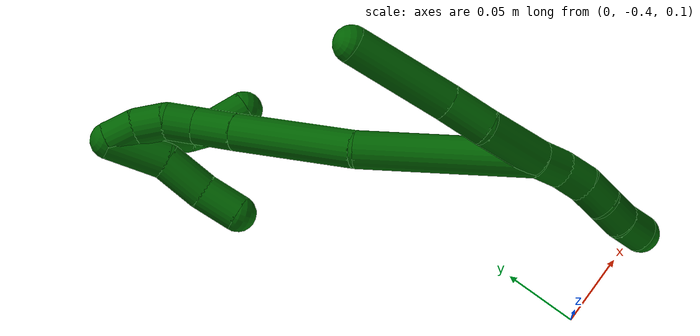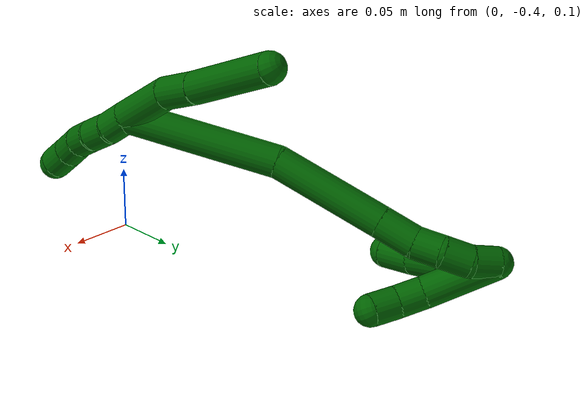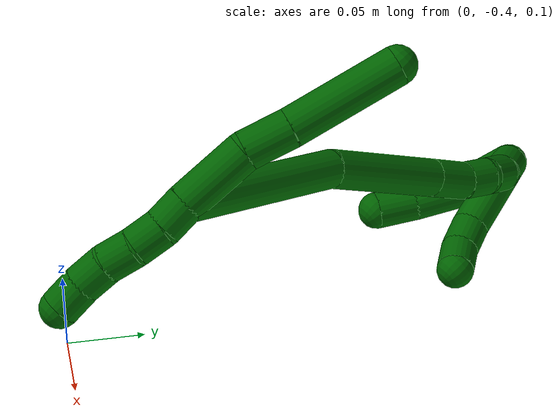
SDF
<sdf version="1.7">
 <world name="default">
  <model name="6">
   <static>0</static>
   <link name="6">
    <collision name="collision-cylinder-e_1_2_8">
     <pose>0.002478 0.003219 0.022706 -0.140833 0.107646 -0.0076</pose>
     <geometry><cylinder><radius>0.0125</radius><length>0.046132</length></cylinder></geometry>
     <surface>
      <friction><ode><mu>1.16</mu><mu2>1.16</mu2><slip1>0</slip1><slip2>0</slip2></ode></friction>
      <contact><ode><kp>1e+06</kp><kd>1</kd><max_vel>0</max_vel><min_depth>0.001</min_depth></ode></contact>
     </surface>
    </collision>
    <visual name="visual-cylinder-e_1_2_8">
     <pose>0.002478 0.003219 0.022706 -0.140833 0.107646 -0.0076</pose>
     <geometry><cylinder><radius>0.0125</radius><length>0.046132</length></cylinder></geometry>
     <material><ambient>0 0.392157 0.003922 1</ambient></material>
    </visual>
    <collision name="collision-cylinder-e_2_8_9">
     <pose>0.00313 0.0106 0.06002 -0.277537 -0.119685 0.016736</pose>
     <geometry><cylinder><radius>0.0125</radius><length>0.030598</length></cylinder></geometry>
     <surface>
      <friction><ode><mu>1.16</mu><mu2>1.16</mu2><slip1>0</slip1><slip2>0</slip2></ode></friction>
      <contact><ode><kp>1e+06</kp><kd>1</kd><max_vel>0</max_vel><min_depth>0.001</min_depth></ode></contact>
     </surface>
    </collision>
    <visual name="visual-cylinder-e_2_8_9">
     <pose>0.00313 0.0106 0.06002 -0.277537 -0.119685 0.016736</pose>
     <geometry><cylinder><radius>0.0125</radius><length>0.030598</length></cylinder></geometry>
     <material><ambient>0 0.392157 0.003922 1</ambient></material>
    </visual>
    <collision name="collision-cylinder-e_3_9_6">
     <pose>-0.001631 0.023138 0.110172 -0.231441 -0.080172 0.009324</pose>
     <geometry><cylinder><radius>0.0125</radius><length>0.073269</length></cylinder></geometry>
     <surface>
      <friction><ode><mu>1.16</mu><mu2>1.16</mu2><slip1>0</slip1><slip2>0</slip2></ode></friction>
      <contact><ode><kp>1e+06</kp><kd>1</kd><max_vel>0</max_vel><min_depth>0.001</min_depth></ode></contact>
     </surface>
    </collision>
    <visual name="visual-cylinder-e_3_9_6">
     <pose>-0.001631 0.023138 0.110172 -0.231441 -0.080172 0.009324</pose>
     <geometry><cylinder><radius>0.0125</radius><length>0.073269</length></cylinder></geometry>
     <material><ambient>0 0.392157 0.003922 1</ambient></material>
    </visual>
    <collision name="collision-cylinder-e_1_2_10">
     <pose>-0.001138 -0.000252 -0.009932 3.11627 -0.114013 -2.70495</pose>
     <geometry><cylinder><radius>0.0125</radius><length>0.02</length></cylinder></geometry>
     <surface>
      <friction><ode><mu>1.16</mu><mu2>1.16</mu2><slip1>0</slip1><slip2>0</slip2></ode></friction>
      <contact><ode><kp>1e+06</kp><kd>1</kd><max_vel>0</max_vel><min_depth>0.001</min_depth></ode></contact>
     </surface>
    </collision>
    <visual name="visual-cylinder-e_1_2_10">
     <pose>-0.001138 -0.000252 -0.009932 3.11627 -0.114013 -2.70495</pose>
     <geometry><cylinder><radius>0.0125</radius><length>0.02</length></cylinder></geometry>
     <material><ambient>0 0.392157 0.003922 1</ambient></material>
    </visual>
    <collision name="collision-cylinder-e_2_10_11">
     <pose>-0.002552 -0.002532 -0.029652 2.93722 -0.027681 -0.268345</pose>
     <geometry><cylinder><radius>0.0125</radius><length>0.02</length></cylinder></geometry>
     <surface>
      <friction><ode><mu>1.16</mu><mu2>1.16</mu2><slip1>0</slip1><slip2>0</slip2></ode></friction>
      <contact><ode><kp>1e+06</kp><kd>1</kd><max_vel>0</max_vel><min_depth>0.001</min_depth></ode></contact>
     </surface>
    </collision>
    <visual name="visual-cylinder-e_2_10_11">
     <pose>-0.002552 -0.002532 -0.029652 2.93722 -0.027681 -0.268345</pose>
     <geometry><cylinder><radius>0.0125</radius><length>0.02</length></cylinder></geometry>
     <material><ambient>0 0.392157 0.003922 1</ambient></material>
    </visual>
    <collision name="collision-cylinder-e_3_11_12">
     <pose>-0.003706 -0.008263 -0.048688 2.76074 -0.087814 -0.448193</pose>
     <geometry><cylinder><radius>0.0125</radius><length>0.02</length></cylinder></geometry>
     <surface>
      <friction><ode><mu>1.16</mu><mu2>1.16</mu2><slip1>0</slip1><slip2>0</slip2></ode></friction>
      <contact><ode><kp>1e+06</kp><kd>1</kd><max_vel>0</max_vel><min_depth>0.001</min_depth></ode></contact>
     </surface>
    </collision>
    <visual name="visual-cylinder-e_3_11_12">
     <pose>-0.003706 -0.008263 -0.048688 2.76074 -0.087814 -0.448193</pose>
     <geometry><cylinder><radius>0.0125</radius><length>0.02</length></cylinder></geometry>
     <material><ambient>0 0.392157 0.003922 1</ambient></material>
    </visual>
    <collision name="collision-cylinder-e_4_12_13">
     <pose>-0.007016 -0.01475 -0.067227 2.85046 -0.24578 -1.40025</pose>
     <geometry><cylinder><radius>0.0125</radius><length>0.02</length></cylinder></geometry>
     <surface>
      <friction><ode><mu>1.16</mu><mu2>1.16</mu2><slip1>0</slip1><slip2>0</slip2></ode></friction>
      <contact><ode><kp>1e+06</kp><kd>1</kd><max_vel>0</max_vel><min_depth>0.001</min_depth></ode></contact>
     </surface>
    </collision>
    <visual name="visual-cylinder-e_4_12_13">
     <pose>-0.007016 -0.01475 -0.067227 2.85046 -0.24578 -1.40025</pose>
     <geometry><cylinder><radius>0.0125</radius><length>0.02</length></cylinder></geometry>
     <material><ambient>0 0.392157 0.003922 1</ambient></material>
    </visual>
    <collision name="collision-cylinder-e_5_13_5">
     <pose>-0.011725 -0.018742 -0.08618 3.01723 -0.22962 -2.15143</pose>
     <geometry><cylinder><radius>0.0125</radius><length>0.02</length></cylinder></geometry>
     <surface>
      <friction><ode><mu>1.16</mu><mu2>1.16</mu2><slip1>0</slip1><slip2>0</slip2></ode></friction>
      <contact><ode><kp>1e+06</kp><kd>1</kd><max_vel>0</max_vel><min_depth>0.001</min_depth></ode></contact>
     </surface>
    </collision>
    <visual name="visual-cylinder-e_5_13_5">
     <pose>-0.011725 -0.018742 -0.08618 3.01723 -0.22962 -2.15143</pose>
     <geometry><cylinder><radius>0.0125</radius><length>0.02</length></cylinder></geometry>
     <material><ambient>0 0.392157 0.003922 1</ambient></material>
    </visual>
    <collision name="collision-cylinder-e_1_2_14">
     <pose>-0.040644 -0.003911 0.043484 0.0897 -0.749647 -0.03531</pose>
     <geometry><cylinder><radius>0.0125</radius><length>0.119299</length></cylinder></geometry>
     <surface>
      <friction><ode><mu>1.16</mu><mu2>1.16</mu2><slip1>0</slip1><slip2>0</slip2></ode></friction>
      <contact><ode><kp>1e+06</kp><kd>1</kd><max_vel>0</max_vel><min_depth>0.001</min_depth></ode></contact>
     </surface>
    </collision>
    <visual name="visual-cylinder-e_1_2_14">
     <pose>-0.040644 -0.003911 0.043484 0.0897 -0.749647 -0.03531</pose>
     <geometry><cylinder><radius>0.0125</radius><length>0.119299</length></cylinder></geometry>
     <material><ambient>0 0.392157 0.003922 1</ambient></material>
    </visual>
    <collision name="collision-cylinder-e_2_14_15">
     <pose>-0.116574 -0.004217 0.112793 -0.13868 -0.93439 0.07004</pose>
     <geometry><cylinder><radius>0.0125</radius><length>0.08775</length></cylinder></geometry>
     <surface>
      <friction><ode><mu>1.16</mu><mu2>1.16</mu2><slip1>0</slip1><slip2>0</slip2></ode></friction>
      <contact><ode><kp>1e+06</kp><kd>1</kd><max_vel>0</max_vel><min_depth>0.001</min_depth></ode></contact>
     </surface>
    </collision>
    <visual name="visual-cylinder-e_2_14_15">
     <pose>-0.116574 -0.004217 0.112793 -0.13868 -0.93439 0.07004</pose>
     <geometry><cylinder><radius>0.0125</radius><length>0.08775</length></cylinder></geometry>
     <material><ambient>0 0.392157 0.003922 1</ambient></material>
    </visual>
    <collision name="collision-cylinder-e_3_15_16">
     <pose>-0.163591 0.00082 0.147272 -0.164111 -0.928705 0.082339</pose>
     <geometry><cylinder><radius>0.0125</radius><length>0.029297</length></cylinder></geometry>
     <surface>
      <friction><ode><mu>1.16</mu><mu2>1.16</mu2><slip1>0</slip1><slip2>0</slip2></ode></friction>
      <contact><ode><kp>1e+06</kp><kd>1</kd><max_vel>0</max_vel><min_depth>0.001</min_depth></ode></contact>
     </surface>
    </collision>
    <visual name="visual-cylinder-e_3_15_16">
     <pose>-0.163591 0.00082 0.147272 -0.164111 -0.928705 0.082339</pose>
     <geometry><cylinder><radius>0.0125</radius><length>0.029297</length></cylinder></geometry>
     <material><ambient>0 0.392157 0.003922 1</ambient></material>
    </visual>
    <collision name="collision-cylinder-e_4_16_17">
     <pose>-0.182168 0.002633 0.163622 -0.049234 -0.726475 0.018717</pose>
     <geometry><cylinder><radius>0.0125</radius><length>0.020613</length></cylinder></geometry>
     <surface>
      <friction><ode><mu>1.16</mu><mu2>1.16</mu2><slip1>0</slip1><slip2>0</slip2></ode></friction>
      <contact><ode><kp>1e+06</kp><kd>1</kd><max_vel>0</max_vel><min_depth>0.001</min_depth></ode></contact>
     </surface>
    </collision>
    <visual name="visual-cylinder-e_4_16_17">
     <pose>-0.182168 0.002633 0.163622 -0.049234 -0.726475 0.018717</pose>
     <geometry><cylinder><radius>0.0125</radius><length>0.020613</length></cylinder></geometry>
     <material><ambient>0 0.392157 0.003922 1</ambient></material>
    </visual>
    <collision name="collision-cylinder-e_5_17_18">
     <pose>-0.197559 0.000347 0.17778 0.391131 -0.88507 -0.187201</pose>
     <geometry><cylinder><radius>0.0125</radius><length>0.022081</length></cylinder></geometry>
     <surface>
      <friction><ode><mu>1.16</mu><mu2>1.16</mu2><slip1>0</slip1><slip2>0</slip2></ode></friction>
      <contact><ode><kp>1e+06</kp><kd>1</kd><max_vel>0</max_vel><min_depth>0.001</min_depth></ode></contact>
     </surface>
    </collision>
    <visual name="visual-cylinder-e_5_17_18">
     <pose>-0.197559 0.000347 0.17778 0.391131 -0.88507 -0.187201</pose>
     <geometry><cylinder><radius>0.0125</radius><length>0.022081</length></cylinder></geometry>
     <material><ambient>0 0.392157 0.003922 1</ambient></material>
    </visual>
    <collision name="collision-cylinder-e_6_18_1">
     <pose>-0.212578 -0.007989 0.190223 0.758784 -0.66589 -0.274033</pose>
     <geometry><cylinder><radius>0.0125</radius><length>0.02096</length></cylinder></geometry>
     <surface>
      <friction><ode><mu>1.16</mu><mu2>1.16</mu2><slip1>0</slip1><slip2>0</slip2></ode></friction>
      <contact><ode><kp>1e+06</kp><kd>1</kd><max_vel>0</max_vel><min_depth>0.001</min_depth></ode></contact>
     </surface>
    </collision>
    <visual name="visual-cylinder-e_6_18_1">
     <pose>-0.212578 -0.007989 0.190223 0.758784 -0.66589 -0.274033</pose>
     <geometry><cylinder><radius>0.0125</radius><length>0.02096</length></cylinder></geometry>
     <material><ambient>0 0.392157 0.003922 1</ambient></material>
    </visual>
    <collision name="collision-cylinder-e_1_1_19">
     <pose>-0.215846 -0.00356 0.169667 -2.77795 0.112455 -0.594181</pose>
     <geometry><cylinder><radius>0.0125</radius><length>0.057149</length></cylinder></geometry>
     <surface>
      <friction><ode><mu>1.16</mu><mu2>1.16</mu2><slip1>0</slip1><slip2>0</slip2></ode></friction>
      <contact><ode><kp>1e+06</kp><kd>1</kd><max_vel>0</max_vel><min_depth>0.001</min_depth></ode></contact>
     </surface>
    </collision>
    <visual name="visual-cylinder-e_1_1_19">
     <pose>-0.215846 -0.00356 0.169667 -2.77795 0.112455 -0.594181</pose>
     <geometry><cylinder><radius>0.0125</radius><length>0.057149</length></cylinder></geometry>
     <material><ambient>0 0.392157 0.003922 1</ambient></material>
    </visual>
    <collision name="collision-cylinder-e_2_19_20">
     <pose>-0.210309 0.011877 0.13415 -2.60524 0.219446 -0.762557</pose>
     <geometry><cylinder><radius>0.0125</radius><length>0.021406</length></cylinder></geometry>
     <surface>
      <friction><ode><mu>1.16</mu><mu2>1.16</mu2><slip1>0</slip1><slip2>0</slip2></ode></friction>
      <contact><ode><kp>1e+06</kp><kd>1</kd><max_vel>0</max_vel><min_depth>0.001</min_depth></ode></contact>
     </surface>
    </collision>
    <visual name="visual-cylinder-e_2_19_20">
     <pose>-0.210309 0.011877 0.13415 -2.60524 0.219446 -0.762557</pose>
     <geometry><cylinder><radius>0.0125</radius><length>0.021406</length></cylinder></geometry>
     <material><ambient>0 0.392157 0.003922 1</ambient></material>
    </visual>
    <collision name="collision-cylinder-e_3_20_4">
     <pose>-0.204409 0.024456 0.118114 -2.34333 0.339472 -0.77193</pose>
     <geometry><cylinder><radius>0.0125</radius><length>0.021446</length></cylinder></geometry>
     <surface>
      <friction><ode><mu>1.16</mu><mu2>1.16</mu2><slip1>0</slip1><slip2>0</slip2></ode></friction>
      <contact><ode><kp>1e+06</kp><kd>1</kd><max_vel>0</max_vel><min_depth>0.001</min_depth></ode></contact>
     </surface>
    </collision>
    <visual name="visual-cylinder-e_3_20_4">
     <pose>-0.204409 0.024456 0.118114 -2.34333 0.339472 -0.77193</pose>
     <geometry><cylinder><radius>0.0125</radius><length>0.021446</length></cylinder></geometry>
     <material><ambient>0 0.392157 0.003922 1</ambient></material>
    </visual>
    <collision name="collision-cylinder-e_1_1_21">
     <pose>-0.2135 -0.015697 0.176963 3.03607 0.279444 2.42315</pose>
     <geometry><cylinder><radius>0.0125</radius><length>0.040258</length></cylinder></geometry>
     <surface>
      <friction><ode><mu>1.16</mu><mu2>1.16</mu2><slip1>0</slip1><slip2>0</slip2></ode></friction>
      <contact><ode><kp>1e+06</kp><kd>1</kd><max_vel>0</max_vel><min_depth>0.001</min_depth></ode></contact>
     </surface>
    </collision>
    <visual name="visual-cylinder-e_1_1_21">
     <pose>-0.2135 -0.015697 0.176963 3.03607 0.279444 2.42315</pose>
     <geometry><cylinder><radius>0.0125</radius><length>0.040258</length></cylinder></geometry>
     <material><ambient>0 0.392157 0.003922 1</ambient></material>
    </visual>
    <collision name="collision-cylinder-e_2_21_22">
     <pose>-0.20444 -0.024751 0.143436 2.68509 0.216941 0.876725</pose>
     <geometry><cylinder><radius>0.0125</radius><length>0.032598</length></cylinder></geometry>
     <surface>
      <friction><ode><mu>1.16</mu><mu2>1.16</mu2><slip1>0</slip1><slip2>0</slip2></ode></friction>
      <contact><ode><kp>1e+06</kp><kd>1</kd><max_vel>0</max_vel><min_depth>0.001</min_depth></ode></contact>
     </surface>
    </collision>
    <visual name="visual-cylinder-e_2_21_22">
     <pose>-0.20444 -0.024751 0.143436 2.68509 0.216941 0.876725</pose>
     <geometry><cylinder><radius>0.0125</radius><length>0.032598</length></cylinder></geometry>
     <material><ambient>0 0.392157 0.003922 1</ambient></material>
    </visual>
    <collision name="collision-cylinder-e_3_22_3">
     <pose>-0.195859 -0.036586 0.117519 2.74886 0.383036 1.54515</pose>
     <geometry><cylinder><radius>0.0125</radius><length>0.027144</length></cylinder></geometry>
     <surface>
      <friction><ode><mu>1.16</mu><mu2>1.16</mu2><slip1>0</slip1><slip2>0</slip2></ode></friction>
      <contact><ode><kp>1e+06</kp><kd>1</kd><max_vel>0</max_vel><min_depth>0.001</min_depth></ode></contact>
     </surface>
    </collision>
    <visual name="visual-cylinder-e_3_22_3">
     <pose>-0.195859 -0.036586 0.117519 2.74886 0.383036 1.54515</pose>
     <geometry><cylinder><radius>0.0125</radius><length>0.027144</length></cylinder></geometry>
     <material><ambient>0 0.392157 0.003922 1</ambient></material>
    </visual>
    <collision name="collision-sphere-3">
     <pose>-0.190787 -0.041404 0.105889 0 -0 0</pose>
     <geometry><sphere><radius>0.0125</radius></sphere></geometry>
     <surface>
      <friction><ode><mu>1.16</mu><mu2>1.16</mu2><slip1>0</slip1><slip2>0</slip2></ode></friction>
      <contact><ode><kp>1e+06</kp><kd>1</kd><max_vel>0</max_vel><min_depth>0.001</min_depth></ode></contact>
     </surface>
    </collision>
    <visual name="visual-sphere-3">
     <pose>-0.190787 -0.041404 0.105889 0 -0 0</pose>
     <geometry><sphere><radius>0.0125</radius></sphere></geometry>
     <material><ambient>0 0.392157 0.003922 1</ambient></material>
    </visual>
    <collision name="collision-sphere-22">
     <pose>-0.200932 -0.031768 0.129149 0 -0 0</pose>
     <geometry><sphere><radius>0.0125</radius></sphere></geometry>
     <surface>
      <friction><ode><mu>1.16</mu><mu2>1.16</mu2><slip1>0</slip1><slip2>0</slip2></ode></friction>
      <contact><ode><kp>1e+06</kp><kd>1</kd><max_vel>0</max_vel><min_depth>0.001</min_depth></ode></contact>
     </surface>
    </collision>
    <visual name="visual-sphere-22">
     <pose>-0.200932 -0.031768 0.129149 0 -0 0</pose>
     <geometry><sphere><radius>0.0125</radius></sphere></geometry>
     <material><ambient>0 0.392157 0.003922 1</ambient></material>
    </visual>
    <collision name="collision-sphere-21">
     <pose>-0.207948 -0.017735 0.157723 0 -0 0</pose>
     <geometry><sphere><radius>0.0125</radius></sphere></geometry>
     <surface>
      <friction><ode><mu>1.16</mu><mu2>1.16</mu2><slip1>0</slip1><slip2>0</slip2></ode></friction>
      <contact><ode><kp>1e+06</kp><kd>1</kd><max_vel>0</max_vel><min_depth>0.001</min_depth></ode></contact>
     </surface>
    </collision>
    <visual name="visual-sphere-21">
     <pose>-0.207948 -0.017735 0.157723 0 -0 0</pose>
     <geometry><sphere><radius>0.0125</radius></sphere></geometry>
     <material><ambient>0 0.392157 0.003922 1</ambient></material>
    </visual>
    <collision name="collision-sphere-4">
     <pose>-0.200838 0.031697 0.111057 0 -0 0</pose>
     <geometry><sphere><radius>0.0125</radius></sphere></geometry>
     <surface>
      <friction><ode><mu>1.16</mu><mu2>1.16</mu2><slip1>0</slip1><slip2>0</slip2></ode></friction>
      <contact><ode><kp>1e+06</kp><kd>1</kd><max_vel>0</max_vel><min_depth>0.001</min_depth></ode></contact>
     </surface>
    </collision>
    <visual name="visual-sphere-4">
     <pose>-0.200838 0.031697 0.111057 0 -0 0</pose>
     <geometry><sphere><radius>0.0125</radius></sphere></geometry>
     <material><ambient>0 0.392157 0.003922 1</ambient></material>
    </visual>
    <collision name="collision-sphere-20">
     <pose>-0.207979 0.017215 0.125171 0 -0 0</pose>
     <geometry><sphere><radius>0.0125</radius></sphere></geometry>
     <surface>
      <friction><ode><mu>1.16</mu><mu2>1.16</mu2><slip1>0</slip1><slip2>0</slip2></ode></friction>
      <contact><ode><kp>1e+06</kp><kd>1</kd><max_vel>0</max_vel><min_depth>0.001</min_depth></ode></contact>
     </surface>
    </collision>
    <visual name="visual-sphere-20">
     <pose>-0.207979 0.017215 0.125171 0 -0 0</pose>
     <geometry><sphere><radius>0.0125</radius></sphere></geometry>
     <material><ambient>0 0.392157 0.003922 1</ambient></material>
    </visual>
    <collision name="collision-sphere-11">
     <pose>-0.002829 -0.004561 -0.03944 0 -0 0</pose>
     <geometry><sphere><radius>0.0125</radius></sphere></geometry>
     <surface>
      <friction><ode><mu>1.16</mu><mu2>1.16</mu2><slip1>0</slip1><slip2>0</slip2></ode></friction>
      <contact><ode><kp>1e+06</kp><kd>1</kd><max_vel>0</max_vel><min_depth>0.001</min_depth></ode></contact>
     </surface>
    </collision>
    <visual name="visual-sphere-11">
     <pose>-0.002829 -0.004561 -0.03944 0 -0 0</pose>
     <geometry><sphere><radius>0.0125</radius></sphere></geometry>
     <material><ambient>0 0.392157 0.003922 1</ambient></material>
    </visual>
    <collision name="collision-sphere-10">
     <pose>-0.002275 -0.000503 -0.019864 0 -0 0</pose>
     <geometry><sphere><radius>0.0125</radius></sphere></geometry>
     <surface>
      <friction><ode><mu>1.16</mu><mu2>1.16</mu2><slip1>0</slip1><slip2>0</slip2></ode></friction>
      <contact><ode><kp>1e+06</kp><kd>1</kd><max_vel>0</max_vel><min_depth>0.001</min_depth></ode></contact>
     </surface>
    </collision>
    <visual name="visual-sphere-10">
     <pose>-0.002275 -0.000503 -0.019864 0 -0 0</pose>
     <geometry><sphere><radius>0.0125</radius></sphere></geometry>
     <material><ambient>0 0.392157 0.003922 1</ambient></material>
    </visual>
    <collision name="collision-sphere-6">
     <pose>-0.004565 0.031514 0.145715 0 -0 0</pose>
     <geometry><sphere><radius>0.0125</radius></sphere></geometry>
     <surface>
      <friction><ode><mu>1.16</mu><mu2>1.16</mu2><slip1>0</slip1><slip2>0</slip2></ode></friction>
      <contact><ode><kp>1e+06</kp><kd>1</kd><max_vel>0</max_vel><min_depth>0.001</min_depth></ode></contact>
     </surface>
    </collision>
    <visual name="visual-sphere-6">
     <pose>-0.004565 0.031514 0.145715 0 -0 0</pose>
     <geometry><sphere><radius>0.0125</radius></sphere></geometry>
     <material><ambient>0 0.392157 0.003922 1</ambient></material>
    </visual>
    <collision name="collision-sphere-9">
     <pose>0.001303 0.014762 0.074628 0 -0 0</pose>
     <geometry><sphere><radius>0.0125</radius></sphere></geometry>
     <surface>
      <friction><ode><mu>1.16</mu><mu2>1.16</mu2><slip1>0</slip1><slip2>0</slip2></ode></friction>
      <contact><ode><kp>1e+06</kp><kd>1</kd><max_vel>0</max_vel><min_depth>0.001</min_depth></ode></contact>
     </surface>
    </collision>
    <visual name="visual-sphere-9">
     <pose>0.001303 0.014762 0.074628 0 -0 0</pose>
     <geometry><sphere><radius>0.0125</radius></sphere></geometry>
     <material><ambient>0 0.392157 0.003922 1</ambient></material>
    </visual>
    <collision name="collision-sphere-2">
     <geometry><sphere><radius>0.0125</radius></sphere></geometry>
     <surface>
      <friction><ode><mu>1.16</mu><mu2>1.16</mu2><slip1>0</slip1><slip2>0</slip2></ode></friction>
      <contact><ode><kp>1e+06</kp><kd>1</kd><max_vel>0</max_vel><min_depth>0.001</min_depth></ode></contact>
     </surface>
    </collision>
    <visual name="visual-sphere-2">
     <geometry><sphere><radius>0.0125</radius></sphere></geometry>
     <material><ambient>0 0.392157 0.003922 1</ambient></material>
    </visual>
    <collision name="collision-sphere-19">
     <pose>-0.212639 0.006539 0.14313 0 -0 0</pose>
     <geometry><sphere><radius>0.0125</radius></sphere></geometry>
     <surface>
      <friction><ode><mu>1.16</mu><mu2>1.16</mu2><slip1>0</slip1><slip2>0</slip2></ode></friction>
      <contact><ode><kp>1e+06</kp><kd>1</kd><max_vel>0</max_vel><min_depth>0.001</min_depth></ode></contact>
     </surface>
    </collision>
    <visual name="visual-sphere-19">
     <pose>-0.212639 0.006539 0.14313 0 -0 0</pose>
     <geometry><sphere><radius>0.0125</radius></sphere></geometry>
     <material><ambient>0 0.392157 0.003922 1</ambient></material>
    </visual>
    <collision name="collision-sphere-8">
     <pose>0.004956 0.006438 0.045411 0 -0 0</pose>
     <geometry><sphere><radius>0.0125</radius></sphere></geometry>
     <surface>
      <friction><ode><mu>1.16</mu><mu2>1.16</mu2><slip1>0</slip1><slip2>0</slip2></ode></friction>
      <contact><ode><kp>1e+06</kp><kd>1</kd><max_vel>0</max_vel><min_depth>0.001</min_depth></ode></contact>
     </surface>
    </collision>
    <visual name="visual-sphere-8">
     <pose>0.004956 0.006438 0.045411 0 -0 0</pose>
     <geometry><sphere><radius>0.0125</radius></sphere></geometry>
     <material><ambient>0 0.392157 0.003922 1</ambient></material>
    </visual>
    <collision name="collision-sphere-12">
     <pose>-0.004583 -0.011966 -0.057935 0 -0 0</pose>
     <geometry><sphere><radius>0.0125</radius></sphere></geometry>
     <surface>
      <friction><ode><mu>1.16</mu><mu2>1.16</mu2><slip1>0</slip1><slip2>0</slip2></ode></friction>
      <contact><ode><kp>1e+06</kp><kd>1</kd><max_vel>0</max_vel><min_depth>0.001</min_depth></ode></contact>
     </surface>
    </collision>
    <visual name="visual-sphere-12">
     <pose>-0.004583 -0.011966 -0.057935 0 -0 0</pose>
     <geometry><sphere><radius>0.0125</radius></sphere></geometry>
     <material><ambient>0 0.392157 0.003922 1</ambient></material>
    </visual>
    <collision name="collision-sphere-13">
     <pose>-0.009449 -0.017534 -0.076518 0 -0 0</pose>
     <geometry><sphere><radius>0.0125</radius></sphere></geometry>
     <surface>
      <friction><ode><mu>1.16</mu><mu2>1.16</mu2><slip1>0</slip1><slip2>0</slip2></ode></friction>
      <contact><ode><kp>1e+06</kp><kd>1</kd><max_vel>0</max_vel><min_depth>0.001</min_depth></ode></contact>
     </surface>
    </collision>
    <visual name="visual-sphere-13">
     <pose>-0.009449 -0.017534 -0.076518 0 -0 0</pose>
     <geometry><sphere><radius>0.0125</radius></sphere></geometry>
     <material><ambient>0 0.392157 0.003922 1</ambient></material>
    </visual>
    <collision name="collision-sphere-5">
     <pose>-0.014001 -0.01995 -0.095843 0 -0 0</pose>
     <geometry><sphere><radius>0.0125</radius></sphere></geometry>
     <surface>
      <friction><ode><mu>1.16</mu><mu2>1.16</mu2><slip1>0</slip1><slip2>0</slip2></ode></friction>
      <contact><ode><kp>1e+06</kp><kd>1</kd><max_vel>0</max_vel><min_depth>0.001</min_depth></ode></contact>
     </surface>
    </collision>
    <visual name="visual-sphere-5">
     <pose>-0.014001 -0.01995 -0.095843 0 -0 0</pose>
     <geometry><sphere><radius>0.0125</radius></sphere></geometry>
     <material><ambient>0 0.392157 0.003922 1</ambient></material>
    </visual>
    <collision name="collision-sphere-14">
     <pose>-0.081288 -0.007822 0.086967 0 -0 0</pose>
     <geometry><sphere><radius>0.0125</radius></sphere></geometry>
     <surface>
      <friction><ode><mu>1.16</mu><mu2>1.16</mu2><slip1>0</slip1><slip2>0</slip2></ode></friction>
      <contact><ode><kp>1e+06</kp><kd>1</kd><max_vel>0</max_vel><min_depth>0.001</min_depth></ode></contact>
     </surface>
    </collision>
    <visual name="visual-sphere-14">
     <pose>-0.081288 -0.007822 0.086967 0 -0 0</pose>
     <geometry><sphere><radius>0.0125</radius></sphere></geometry>
     <material><ambient>0 0.392157 0.003922 1</ambient></material>
    </visual>
    <collision name="collision-sphere-15">
     <pose>-0.15186 -0.000613 0.138618 0 -0 0</pose>
     <geometry><sphere><radius>0.0125</radius></sphere></geometry>
     <surface>
      <friction><ode><mu>1.16</mu><mu2>1.16</mu2><slip1>0</slip1><slip2>0</slip2></ode></friction>
      <contact><ode><kp>1e+06</kp><kd>1</kd><max_vel>0</max_vel><min_depth>0.001</min_depth></ode></contact>
     </surface>
    </collision>
    <visual name="visual-sphere-15">
     <pose>-0.15186 -0.000613 0.138618 0 -0 0</pose>
     <geometry><sphere><radius>0.0125</radius></sphere></geometry>
     <material><ambient>0 0.392157 0.003922 1</ambient></material>
    </visual>
    <collision name="collision-sphere-16">
     <pose>-0.175322 0.002254 0.155927 0 -0 0</pose>
     <geometry><sphere><radius>0.0125</radius></sphere></geometry>
     <surface>
      <friction><ode><mu>1.16</mu><mu2>1.16</mu2><slip1>0</slip1><slip2>0</slip2></ode></friction>
      <contact><ode><kp>1e+06</kp><kd>1</kd><max_vel>0</max_vel><min_depth>0.001</min_depth></ode></contact>
     </surface>
    </collision>
    <visual name="visual-sphere-16">
     <pose>-0.175322 0.002254 0.155927 0 -0 0</pose>
     <geometry><sphere><radius>0.0125</radius></sphere></geometry>
     <material><ambient>0 0.392157 0.003922 1</ambient></material>
    </visual>
    <collision name="collision-sphere-17">
     <pose>-0.189014 0.003012 0.171317 0 -0 0</pose>
     <geometry><sphere><radius>0.0125</radius></sphere></geometry>
     <surface>
      <friction><ode><mu>1.16</mu><mu2>1.16</mu2><slip1>0</slip1><slip2>0</slip2></ode></friction>
      <contact><ode><kp>1e+06</kp><kd>1</kd><max_vel>0</max_vel><min_depth>0.001</min_depth></ode></contact>
     </surface>
    </collision>
    <visual name="visual-sphere-17">
     <pose>-0.189014 0.003012 0.171317 0 -0 0</pose>
     <geometry><sphere><radius>0.0125</radius></sphere></geometry>
     <material><ambient>0 0.392157 0.003922 1</ambient></material>
    </visual>
    <collision name="collision-sphere-18">
     <pose>-0.206104 -0.002319 0.184243 0 -0 0</pose>
     <geometry><sphere><radius>0.0125</radius></sphere></geometry>
     <surface>
      <friction><ode><mu>1.16</mu><mu2>1.16</mu2><slip1>0</slip1><slip2>0</slip2></ode></friction>
      <contact><ode><kp>1e+06</kp><kd>1</kd><max_vel>0</max_vel><min_depth>0.001</min_depth></ode></contact>
     </surface>
    </collision>
    <visual name="visual-sphere-18">
     <pose>-0.206104 -0.002319 0.184243 0 -0 0</pose>
     <geometry><sphere><radius>0.0125</radius></sphere></geometry>
     <material><ambient>0 0.392157 0.003922 1</ambient></material>
    </visual>
    <collision name="collision-sphere-1">
     <pose>-0.219052 -0.013659 0.196204 0 -0 0</pose>
     <geometry><sphere><radius>0.0125</radius></sphere></geometry>
     <surface>
      <friction><ode><mu>1.16</mu><mu2>1.16</mu2><slip1>0</slip1><slip2>0</slip2></ode></friction>
      <contact><ode><kp>1e+06</kp><kd>1</kd><max_vel>0</max_vel><min_depth>0.001</min_depth></ode></contact>
     </surface>
    </collision>
    <visual name="visual-sphere-1">
     <pose>-0.219052 -0.013659 0.196204 0 -0 0</pose>
     <geometry><sphere><radius>0.0125</radius></sphere></geometry>
     <material><ambient>0 0.392157 0.003922 1</ambient></material>
    </visual>
    <inertial>
     <pose>-0.099563 -0.001997 0.089198 0 -0 0</pose>
     <mass>0.75</mass>
     <inertia>
      <ixx>0.00019</ixx>
      <ixy>0</ixy>
      <ixz>0</ixz>
      <iyy>0.000243</iyy>
      <iyz>0</iyz>
      <izz>0.000147</izz>
     </inertia>
    </inertial>
   </link>
   <pose>0.054122 -0.327499 0.231118 -0.201483 -1.02166 -0.948466</pose>
  </model>
 </world>
</sdf>
